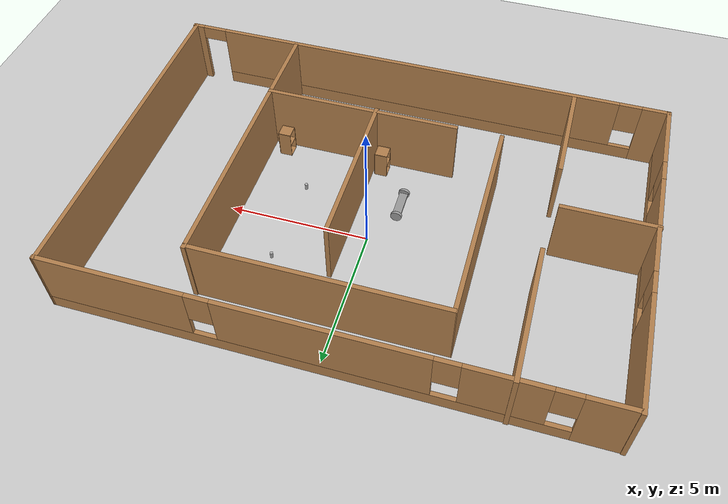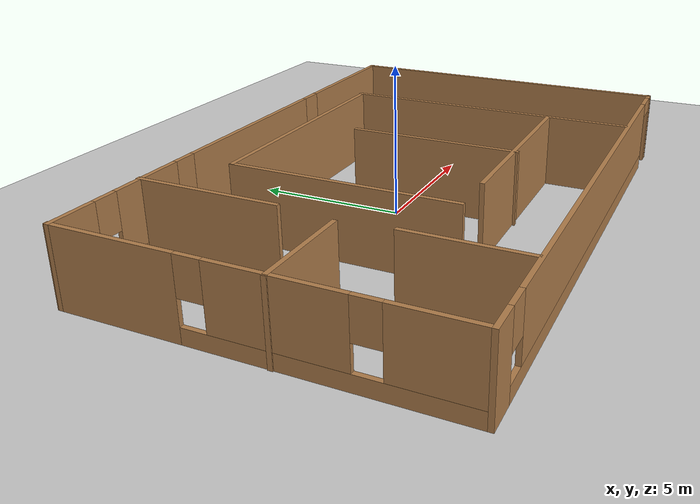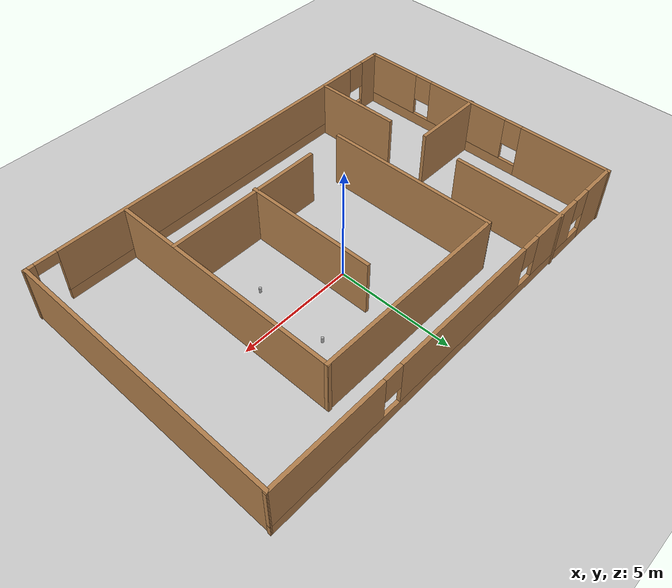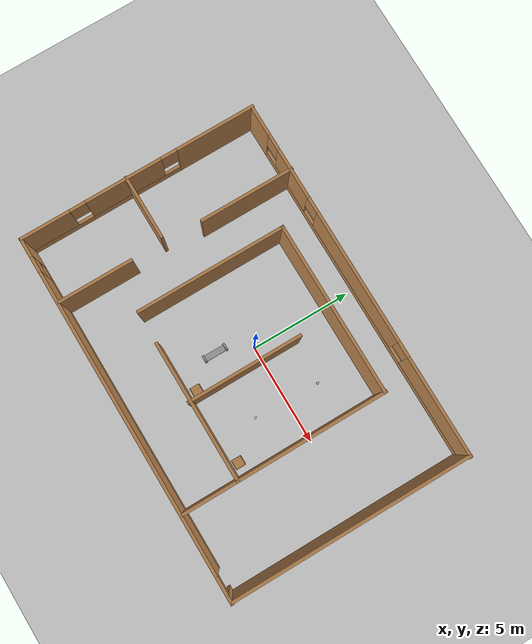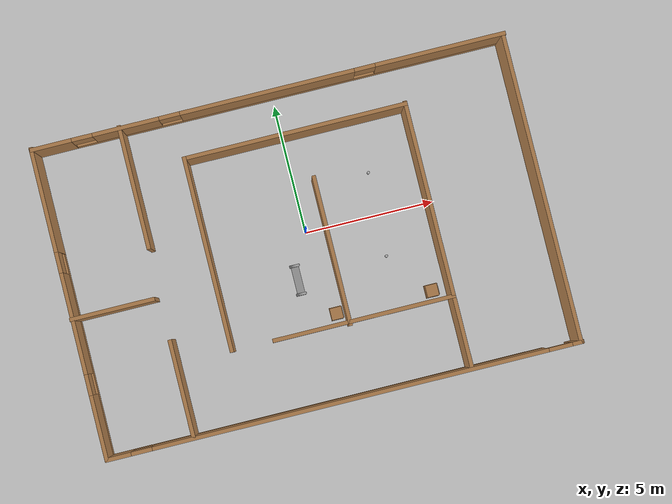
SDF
<sdf version="1.7">
 <world name="world_demo">
  <model name="ground_plane">
   <static>1</static>
   <link name="link">
    <collision name="collision">
     <geometry><plane><normal>0 0 1</normal><size>1 1</size></plane></geometry>
    </collision>
    <visual name="visual">
     <geometry><plane><normal>0 0 1</normal><size>100 100</size></plane></geometry>
     <material>
      <ambient>0.8 0.8 0.8 1</ambient>
      <diffuse>0.8 0.8 0.8 1</diffuse>
      <specular>0.8 0.8 0.8 1</specular>
     </material>
    </visual>
   </link>
  </model>
  <model name="two_wheeler">
   <link name="link_1">
    <inertial>
     <mass>1</mass>
     <inertia>
      <ixx>0.166667</ixx>
      <ixy>0</ixy>
      <ixz>0</ixz>
      <iyy>0.166667</iyy>
      <iyz>0</iyz>
      <izz>0.166667</izz>
     </inertia>
    </inertial>
    <pose>0 -0 0.2 -1e-05 -0 0</pose>
    <visual name="visual">
     <geometry><box><size>0.3 1 0.1</size></box></geometry>
     <material>
      <lighting>1</lighting>
      <script><uri>file://media/materials/scripts/gazebo.material</uri><name>Gazebo/Grey</name></script>
      <shader type="pixel"><normal_map>__default__</normal_map></shader>
      <ambient>0.3 0.3 0.3 1</ambient>
      <diffuse>0.7 0.7 0.7 1</diffuse>
      <specular>0.01 0.01 0.01 1</specular>
      <emissive>0 0 0 1</emissive>
     </material>
    </visual>
    <collision name="collision">
     <geometry><box><size>0.3 1 0.1</size></box></geometry>
     <surface>
      <friction>
       <ode><mu>1</mu><mu2>1</mu2><fdir1>0 0 0</fdir1><slip1>0</slip1><slip2>0</slip2></ode>
       <torsional>
        <coefficient>1</coefficient>
        <patch_radius>0</patch_radius>
        <surface_radius>0</surface_radius>
        <use_patch_radius>1</use_patch_radius>
        <ode><slip>0</slip></ode>
       </torsional>
      </friction>
      <bounce><restitution_coefficient>0</restitution_coefficient><threshold>1e+06</threshold></bounce>
      <contact>
       <collide_without_contact>0</collide_without_contact>
       <collide_without_contact_bitmask>1</collide_without_contact_bitmask>
       <collide_bitmask>1</collide_bitmask>
       <ode>
        <soft_cfm>0</soft_cfm>
        <soft_erp>0.2</soft_erp>
        <kp>1e+13</kp>
        <kd>1</kd>
        <max_vel>0.01</max_vel>
        <min_depth>0</min_depth>
       </ode>
       <bullet>
        <split_impulse>1</split_impulse>
        <split_impulse_penetration_threshold>-0.01</split_impulse_penetration_threshold>
        <soft_cfm>0</soft_cfm>
        <soft_erp>0.2</soft_erp>
        <kp>1e+13</kp>
        <kd>1</kd>
       </bullet>
      </contact>
     </surface>
    </collision>
   </link>
   <link name="link_2">
    <inertial>
     <mass>1</mass>
     <inertia><ixx>0.145833</ixx><ixy>0</ixy><ixz>0</ixz><iyy>0.145833</iyy><iyz>0</iyz><izz>0.125</izz></inertia>
    </inertial>
    <pose>-0 -0.550017 0.2 1.5707 -0 0</pose>
    <visual name="visual">
     <geometry><cylinder><radius>0.2</radius><length>0.1</length></cylinder></geometry>
     <material>
      <lighting>1</lighting>
      <script><uri>file://media/materials/scripts/gazebo.material</uri><name>Gazebo/Grey</name></script>
      <shader type="pixel"><normal_map>__default__</normal_map></shader>
      <ambient>0.3 0.3 0.3 1</ambient>
      <diffuse>0.7 0.7 0.7 1</diffuse>
      <specular>0.01 0.01 0.01 1</specular>
      <emissive>0 0 0 1</emissive>
     </material>
    </visual>
    <collision name="collision">
     <geometry><cylinder><radius>0.2</radius><length>0.1</length></cylinder></geometry>
     <surface>
      <friction>
       <ode><mu>1</mu><mu2>1</mu2><fdir1>0 0 0</fdir1><slip1>0</slip1><slip2>0</slip2></ode>
       <torsional>
        <coefficient>1</coefficient>
        <patch_radius>0</patch_radius>
        <surface_radius>0</surface_radius>
        <use_patch_radius>1</use_patch_radius>
        <ode><slip>0</slip></ode>
       </torsional>
      </friction>
      <bounce><restitution_coefficient>0</restitution_coefficient><threshold>1e+06</threshold></bounce>
      <contact>
       <collide_without_contact>0</collide_without_contact>
       <collide_without_contact_bitmask>1</collide_without_contact_bitmask>
       <collide_bitmask>1</collide_bitmask>
       <ode>
        <soft_cfm>0</soft_cfm>
        <soft_erp>0.2</soft_erp>
        <kp>1e+13</kp>
        <kd>1</kd>
        <max_vel>0.01</max_vel>
        <min_depth>0</min_depth>
       </ode>
       <bullet>
        <split_impulse>1</split_impulse>
        <split_impulse_penetration_threshold>-0.01</split_impulse_penetration_threshold>
        <soft_cfm>0</soft_cfm>
        <soft_erp>0.2</soft_erp>
        <kp>1e+13</kp>
        <kd>1</kd>
       </bullet>
      </contact>
     </surface>
    </collision>
   </link>
   <link name="link_2_clone">
    <inertial>
     <mass>1</mass>
     <inertia><ixx>0.145833</ixx><ixy>0</ixy><ixz>0</ixz><iyy>0.145833</iyy><iyz>0</iyz><izz>0.125</izz></inertia>
    </inertial>
    <pose>0 0.550019 0.199995 1.57069 -0 0</pose>
    <visual name="visual">
     <geometry><cylinder><radius>0.2</radius><length>0.1</length></cylinder></geometry>
     <material>
      <lighting>1</lighting>
      <script><uri>file://media/materials/scripts/gazebo.material</uri><name>Gazebo/Grey</name></script>
      <shader type="pixel"><normal_map>__default__</normal_map></shader>
      <ambient>0.3 0.3 0.3 1</ambient>
      <diffuse>0.7 0.7 0.7 1</diffuse>
      <specular>0.01 0.01 0.01 1</specular>
      <emissive>0 0 0 1</emissive>
     </material>
    </visual>
    <collision name="collision">
     <geometry><cylinder><radius>0.2</radius><length>0.1</length></cylinder></geometry>
     <surface>
      <friction>
       <ode><mu>1</mu><mu2>1</mu2><fdir1>0 0 0</fdir1><slip1>0</slip1><slip2>0</slip2></ode>
       <torsional>
        <coefficient>1</coefficient>
        <patch_radius>0</patch_radius>
        <surface_radius>0</surface_radius>
        <use_patch_radius>1</use_patch_radius>
        <ode><slip>0</slip></ode>
       </torsional>
      </friction>
      <bounce><restitution_coefficient>0</restitution_coefficient><threshold>1e+06</threshold></bounce>
      <contact>
       <collide_without_contact>0</collide_without_contact>
       <collide_without_contact_bitmask>1</collide_without_contact_bitmask>
       <collide_bitmask>1</collide_bitmask>
       <ode>
        <soft_cfm>0</soft_cfm>
        <soft_erp>0.2</soft_erp>
        <kp>1e+13</kp>
        <kd>1</kd>
        <max_vel>0.01</max_vel>
        <min_depth>0</min_depth>
       </ode>
       <bullet>
        <split_impulse>1</split_impulse>
        <split_impulse_penetration_threshold>-0.01</split_impulse_penetration_threshold>
        <soft_cfm>0</soft_cfm>
        <soft_erp>0.2</soft_erp>
        <kp>1e+13</kp>
        <kd>1</kd>
       </bullet>
      </contact>
     </surface>
    </collision>
   </link>
   <joint name="link_1_JOINT_0" type="revolute">
    <parent>link_1</parent>
    <child>link_2</child>
    <axis>
     <xyz>0 0 1</xyz>
     <limit>
      <lower>-1.79769e+308</lower>
      <upper>1.79769e+308</upper>
      <effort>-1</effort>
      <velocity>-1</velocity>
     </limit>
     <dynamics>
      <spring_reference>0</spring_reference>
      <spring_stiffness>0</spring_stiffness>
      <damping>0</damping>
     </dynamics>
    </axis>
    <physics>
     <ode><limit><cfm>0</cfm><erp>0.2</erp></limit><suspension><cfm>0</cfm><erp>0.2</erp></suspension></ode>
    </physics>
   </joint>
   <joint name="link_1_JOINT_1" type="revolute">
    <parent>link_1</parent>
    <child>link_2_clone</child>
    <axis>
     <xyz>1 0 0</xyz>
     <limit>
      <lower>-1.79769e+308</lower>
      <upper>1.79769e+308</upper>
      <effort>-1</effort>
      <velocity>-1</velocity>
     </limit>
     <dynamics>
      <spring_reference>0</spring_reference>
      <spring_stiffness>0</spring_stiffness>
      <damping>0</damping>
     </dynamics>
    </axis>
    <physics>
     <ode><limit><cfm>0</cfm><erp>0.2</erp></limit><suspension><cfm>0</cfm><erp>0.2</erp></suspension></ode>
    </physics>
   </joint>
   <static>0</static>
   <pose>-0.728495 -1.68328 5.3e-05 9.6e-05 -0 0</pose>
  </model>
  <model name="Building">
   <pose>-0.15005 -0.566277 0 0 -0 0</pose>
   <link name="Wall_0">
    <pose>-9.05381 0.015245 0 0 -0 -1.5708</pose>
    <visual name="Wall_0_Visual_0">
     <pose>-3.98822 0 1.25 0 -0 0</pose>
     <geometry><box><size>4.02355 0.15 2.5</size></box></geometry>
     <material>
      <script><uri>file://media/materials/scripts/gazebo.material</uri><name>Gazebo/Wood</name></script>
      <ambient>1 1 1 1</ambient>
     </material>
     <meta><layer>0</layer></meta>
    </visual>
    <collision name="Wall_0_Collision_0">
     <geometry><box><size>4.02355 0.15 2.5</size></box></geometry>
     <pose>-3.98822 0 1.25 0 -0 0</pose>
    </collision>
    <visual name="Wall_0_Visual_1">
     <pose>2.01178 0 0.25 0 -0 0</pose>
     <geometry><box><size>7.97645 0.15 0.5</size></box></geometry>
     <material>
      <script><uri>file://media/materials/scripts/gazebo.material</uri><name>Gazebo/Wood</name></script>
      <ambient>1 1 1 1</ambient>
     </material>
     <meta><layer>0</layer></meta>
    </visual>
    <collision name="Wall_0_Collision_1">
     <geometry><box><size>7.97645 0.15 0.5</size></box></geometry>
     <pose>2.01178 0 0.25 0 -0 0</pose>
    </collision>
    <visual name="Wall_0_Visual_2">
     <pose>0.759746 0 1.5 0 -0 0</pose>
     <geometry><box><size>3.87238 0.15 2</size></box></geometry>
     <material>
      <script><uri>file://media/materials/scripts/gazebo.material</uri><name>Gazebo/Wood</name></script>
      <ambient>1 1 1 1</ambient>
     </material>
     <meta><layer>0</layer></meta>
    </visual>
    <collision name="Wall_0_Collision_2">
     <geometry><box><size>3.87238 0.15 2</size></box></geometry>
     <pose>0.759746 0 1.5 0 -0 0</pose>
    </collision>
    <visual name="Wall_0_Visual_3">
     <pose>4.74797 0 1.5 0 -0 0</pose>
     <geometry><box><size>2.50406 0.15 2</size></box></geometry>
     <material>
      <script><uri>file://media/materials/scripts/gazebo.material</uri><name>Gazebo/Wood</name></script>
      <ambient>1 1 1 1</ambient>
     </material>
     <meta><layer>0</layer></meta>
    </visual>
    <collision name="Wall_0_Collision_3">
     <geometry><box><size>2.50406 0.15 2</size></box></geometry>
     <pose>4.74797 0 1.5 0 -0 0</pose>
    </collision>
    <visual name="Wall_0_Visual_4">
     <pose>-1.57645 0 1.9 0 -0 0</pose>
     <geometry><box><size>0.8 0.15 1.2</size></box></geometry>
     <material>
      <script><uri>file://media/materials/scripts/gazebo.material</uri><name>Gazebo/Wood</name></script>
      <ambient>1 1 1 1</ambient>
     </material>
     <meta><layer>0</layer></meta>
    </visual>
    <collision name="Wall_0_Collision_4">
     <geometry><box><size>0.8 0.15 1.2</size></box></geometry>
     <pose>-1.57645 0 1.9 0 -0 0</pose>
    </collision>
    <visual name="Wall_0_Visual_5">
     <pose>3.09594 0 1.9 0 -0 0</pose>
     <geometry><box><size>0.8 0.15 1.2</size></box></geometry>
     <material>
      <script><uri>file://media/materials/scripts/gazebo.material</uri><name>Gazebo/Wood</name></script>
      <ambient>1 1 1 1</ambient>
     </material>
     <meta><layer>0</layer></meta>
    </visual>
    <collision name="Wall_0_Collision_5">
     <geometry><box><size>0.8 0.15 1.2</size></box></geometry>
     <pose>3.09594 0 1.9 0 -0 0</pose>
    </collision>
   </link>
   <link name="Wall_1">
    <pose>0.015143 -5.94264 0 0 -0 -0.000253</pose>
    <visual name="Wall_1_Visual_0">
     <pose>-8.64249 0 1.25 0 -0 0</pose>
     <geometry><box><size>1.00381 0.15 2.5</size></box></geometry>
     <material>
      <script><uri>file://media/materials/scripts/gazebo.material</uri><name>Gazebo/Wood</name></script>
      <ambient>1 1 1 1</ambient>
     </material>
     <meta><layer>0</layer></meta>
    </visual>
    <collision name="Wall_1_Collision_0">
     <geometry><box><size>1.00381 0.15 2.5</size></box></geometry>
     <pose>-8.64249 0 1.25 0 -0 0</pose>
    </collision>
    <visual name="Wall_1_Visual_1">
     <pose>8.92488 0 1.25 0 -0 0</pose>
     <geometry><box><size>0.439028 0.15 2.5</size></box></geometry>
     <material>
      <script><uri>file://media/materials/scripts/gazebo.material</uri><name>Gazebo/Wood</name></script>
      <ambient>1 1 1 1</ambient>
     </material>
     <meta><layer>0</layer></meta>
    </visual>
    <collision name="Wall_1_Collision_1">
     <geometry><box><size>0.439028 0.15 2.5</size></box></geometry>
     <pose>8.92488 0 1.25 0 -0 0</pose>
    </collision>
    <visual name="Wall_1_Visual_2">
     <pose>-0.167608 0 0.25 0 -0 0</pose>
     <geometry><box><size>15.9459 0.15 0.5</size></box></geometry>
     <material>
      <script><uri>file://media/materials/scripts/gazebo.material</uri><name>Gazebo/Wood</name></script>
      <ambient>1 1 1 1</ambient>
     </material>
     <meta><layer>0</layer></meta>
    </visual>
    <collision name="Wall_1_Collision_2">
     <geometry><box><size>15.9459 0.15 0.5</size></box></geometry>
     <pose>-0.167608 0 0.25 0 -0 0</pose>
    </collision>
    <visual name="Wall_1_Visual_3">
     <pose>0.232392 0 1.5 0 -0 0</pose>
     <geometry><box><size>15.1459 0.15 2</size></box></geometry>
     <material>
      <script><uri>file://media/materials/scripts/gazebo.material</uri><name>Gazebo/Wood</name></script>
      <ambient>1 1 1 1</ambient>
     </material>
     <meta><layer>0</layer></meta>
    </visual>
    <collision name="Wall_1_Collision_3">
     <geometry><box><size>15.1459 0.15 2</size></box></geometry>
     <pose>0.232392 0 1.5 0 -0 0</pose>
    </collision>
    <visual name="Wall_1_Visual_4">
     <pose>-7.74058 0 1.9 0 -0 0</pose>
     <geometry><box><size>0.8 0.15 1.2</size></box></geometry>
     <material>
      <script><uri>file://media/materials/scripts/gazebo.material</uri><name>Gazebo/Wood</name></script>
      <ambient>1 1 1 1</ambient>
     </material>
     <meta><layer>0</layer></meta>
    </visual>
    <collision name="Wall_1_Collision_4">
     <geometry><box><size>0.8 0.15 1.2</size></box></geometry>
     <pose>-7.74058 0 1.9 0 -0 0</pose>
    </collision>
    <visual name="Wall_1_Visual_5">
     <pose>8.25537 0 2.25 0 -0 0</pose>
     <geometry><box><size>0.9 0.15 0.5</size></box></geometry>
     <material>
      <script><uri>file://media/materials/scripts/gazebo.material</uri><name>Gazebo/Wood</name></script>
      <ambient>1 1 1 1</ambient>
     </material>
     <meta><layer>0</layer></meta>
    </visual>
    <collision name="Wall_1_Collision_5">
     <geometry><box><size>0.9 0.15 0.5</size></box></geometry>
     <pose>8.25537 0 2.25 0 -0 0</pose>
    </collision>
   </link>
   <link name="Wall_18">
    <collision name="Wall_18_Collision">
     <geometry><box><size>7 0.15 2.5</size></box></geometry>
     <pose>0 0 1.25 0 -0 0</pose>
    </collision>
    <visual name="Wall_18_Visual">
     <pose>0 0 1.25 0 -0 0</pose>
     <geometry><box><size>7 0.15 2.5</size></box></geometry>
     <material>
      <script><uri>file://media/materials/scripts/gazebo.material</uri><name>Gazebo/Wood</name></script>
      <ambient>1 1 1 1</ambient>
     </material>
     <meta><layer>0</layer></meta>
    </visual>
    <pose>1.45861 -3.14622 0 0 -0 0</pose>
   </link>
   <link name="Wall_2">
    <collision name="Wall_2_Collision">
     <geometry><box><size>12 0.15 2.5</size></box></geometry>
     <pose>0 0 1.25 0 -0 0</pose>
    </collision>
    <visual name="Wall_2_Visual">
     <pose>0 0 1.25 0 -0 0</pose>
     <geometry><box><size>12 0.15 2.5</size></box></geometry>
     <material>
      <script><uri>file://media/materials/scripts/gazebo.material</uri><name>Gazebo/Wood</name></script>
      <ambient>1 1 1 1</ambient>
     </material>
     <meta><layer>0</layer></meta>
    </visual>
    <pose>9.04892 -0.019933 0 0 -0 1.5708</pose>
   </link>
   <link name="Wall_20">
    <collision name="Wall_20_Collision">
     <geometry><box><size>5.75 0.15 2.5</size></box></geometry>
     <pose>0 0 1.25 0 -0 0</pose>
    </collision>
    <visual name="Wall_20_Visual">
     <pose>0 0 1.25 0 -0 0</pose>
     <geometry><box><size>5.75 0.15 2.5</size></box></geometry>
     <material>
      <script><uri>file://media/materials/scripts/gazebo.material</uri><name>Gazebo/Wood</name></script>
      <ambient>1 1 1 1</ambient>
     </material>
     <meta><layer>0</layer></meta>
    </visual>
    <pose>0.913973 -0.425041 0 0 -0 1.5708</pose>
   </link>
   <link name="Wall_22">
    <collision name="Wall_22_Collision">
     <geometry><box><size>4.75 0.15 2.5</size></box></geometry>
     <pose>0 0 1.25 0 -0 0</pose>
    </collision>
    <visual name="Wall_22_Visual">
     <pose>0 0 1.25 0 -0 0</pose>
     <geometry><box><size>4.75 0.15 2.5</size></box></geometry>
     <material>
      <script><uri>file://media/materials/scripts/gazebo.material</uri><name>Gazebo/Wood</name></script>
      <ambient>1 1 1 1</ambient>
     </material>
     <meta><layer>0</layer></meta>
    </visual>
    <pose>-5.67865 3.64495 0 0 -0 -1.5708</pose>
   </link>
   <link name="Wall_24">
    <collision name="Wall_24_Collision">
     <geometry><box><size>3.25 0.15 2.5</size></box></geometry>
     <pose>0 0 1.25 0 -0 0</pose>
    </collision>
    <visual name="Wall_24_Visual">
     <pose>0 0 1.25 0 -0 0</pose>
     <geometry><box><size>3.25 0.15 2.5</size></box></geometry>
     <material>
      <script><uri>file://media/materials/scripts/gazebo.material</uri><name>Gazebo/Wood</name></script>
      <ambient>1 1 1 1</ambient>
     </material>
     <meta><layer>0</layer></meta>
    </visual>
    <pose>-7.53456 -0.570766 0 0 -0 3.14159</pose>
   </link>
   <link name="Wall_26">
    <collision name="Wall_26_Collision">
     <geometry><box><size>3.75 0.15 2.5</size></box></geometry>
     <pose>0 0 1.25 0 -0 0</pose>
    </collision>
    <visual name="Wall_26_Visual">
     <pose>0 0 1.25 0 -0 0</pose>
     <geometry><box><size>3.75 0.15 2.5</size></box></geometry>
     <material>
      <script><uri>file://media/materials/scripts/gazebo.material</uri><name>Gazebo/Wood</name></script>
      <ambient>1 1 1 1</ambient>
     </material>
     <meta><layer>0</layer></meta>
    </visual>
    <pose>-5.73983 -4.05323 0 0 -0 -1.5708</pose>
   </link>
   <link name="Wall_5">
    <pose>0.015143 5.90736 0 0 -0 -0.000253</pose>
    <visual name="Wall_5_Visual_0">
     <pose>-8.33937 0 1.25 0 -0 0</pose>
     <geometry><box><size>1.61005 0.15 2.5</size></box></geometry>
     <material>
      <script><uri>file://media/materials/scripts/gazebo.material</uri><name>Gazebo/Wood</name></script>
      <ambient>1 1 1 1</ambient>
     </material>
     <meta><layer>0</layer></meta>
    </visual>
    <collision name="Wall_5_Collision_0">
     <geometry><box><size>1.61005 0.15 2.5</size></box></geometry>
     <pose>-8.33937 0 1.25 0 -0 0</pose>
    </collision>
    <visual name="Wall_5_Visual_1">
     <pose>0.805026 0 0.25 0 -0 0</pose>
     <geometry><box><size>16.6787 0.15 0.5</size></box></geometry>
     <material>
      <script><uri>file://media/materials/scripts/gazebo.material</uri><name>Gazebo/Wood</name></script>
      <ambient>1 1 1 1</ambient>
     </material>
     <meta><layer>0</layer></meta>
    </visual>
    <collision name="Wall_5_Collision_1">
     <geometry><box><size>16.6787 0.15 0.5</size></box></geometry>
     <pose>0.805026 0 0.25 0 -0 0</pose>
    </collision>
    <visual name="Wall_5_Visual_2">
     <pose>-5.45773 0 1.5 0 -0 0</pose>
     <geometry><box><size>2.55322 0.15 2</size></box></geometry>
     <material>
      <script><uri>file://media/materials/scripts/gazebo.material</uri><name>Gazebo/Wood</name></script>
      <ambient>1 1 1 1</ambient>
     </material>
     <meta><layer>0</layer></meta>
    </visual>
    <collision name="Wall_5_Collision_2">
     <geometry><box><size>2.55322 0.15 2</size></box></geometry>
     <pose>-5.45773 0 1.5 0 -0 0</pose>
    </collision>
    <visual name="Wall_5_Visual_3">
     <pose>-0.028206 0 1.5 0 -0 0</pose>
     <geometry><box><size>6.70584 0.15 2</size></box></geometry>
     <material>
      <script><uri>file://media/materials/scripts/gazebo.material</uri><name>Gazebo/Wood</name></script>
      <ambient>1 1 1 1</ambient>
     </material>
     <meta><layer>0</layer></meta>
    </visual>
    <collision name="Wall_5_Collision_3">
     <geometry><box><size>6.70584 0.15 2</size></box></geometry>
     <pose>-0.028206 0 1.5 0 -0 0</pose>
    </collision>
    <visual name="Wall_5_Visual_4">
     <pose>6.63455 0 1.5 0 -0 0</pose>
     <geometry><box><size>5.01968 0.15 2</size></box></geometry>
     <material>
      <script><uri>file://media/materials/scripts/gazebo.material</uri><name>Gazebo/Wood</name></script>
      <ambient>1 1 1 1</ambient>
     </material>
     <meta><layer>0</layer></meta>
    </visual>
    <collision name="Wall_5_Collision_4">
     <geometry><box><size>5.01968 0.15 2</size></box></geometry>
     <pose>6.63455 0 1.5 0 -0 0</pose>
    </collision>
    <visual name="Wall_5_Visual_5">
     <pose>-7.13434 0 1.9 0 -0 0</pose>
     <geometry><box><size>0.8 0.15 1.2</size></box></geometry>
     <material>
      <script><uri>file://media/materials/scripts/gazebo.material</uri><name>Gazebo/Wood</name></script>
      <ambient>1 1 1 1</ambient>
     </material>
     <meta><layer>0</layer></meta>
    </visual>
    <collision name="Wall_5_Collision_5">
     <geometry><box><size>0.8 0.15 1.2</size></box></geometry>
     <pose>-7.13434 0 1.9 0 -0 0</pose>
    </collision>
    <visual name="Wall_5_Visual_6">
     <pose>-3.78112 0 1.9 0 -0 0</pose>
     <geometry><box><size>0.8 0.15 1.2</size></box></geometry>
     <material>
      <script><uri>file://media/materials/scripts/gazebo.material</uri><name>Gazebo/Wood</name></script>
      <ambient>1 1 1 1</ambient>
     </material>
     <meta><layer>0</layer></meta>
    </visual>
    <collision name="Wall_5_Collision_6">
     <geometry><box><size>0.8 0.15 1.2</size></box></geometry>
     <pose>-3.78112 0 1.9 0 -0 0</pose>
    </collision>
    <visual name="Wall_5_Visual_7">
     <pose>3.72471 0 1.9 0 -0 0</pose>
     <geometry><box><size>0.8 0.15 1.2</size></box></geometry>
     <material>
      <script><uri>file://media/materials/scripts/gazebo.material</uri><name>Gazebo/Wood</name></script>
      <ambient>1 1 1 1</ambient>
     </material>
     <meta><layer>0</layer></meta>
    </visual>
    <collision name="Wall_5_Collision_7">
     <geometry><box><size>0.8 0.15 1.2</size></box></geometry>
     <pose>3.72471 0 1.9 0 -0 0</pose>
    </collision>
   </link>
   <link name="Wall_7">
    <collision name="Wall_7_Collision">
     <geometry><box><size>10.25 0.15 2.5</size></box></geometry>
     <pose>0 0 1.25 0 -0 0</pose>
    </collision>
    <visual name="Wall_7_Visual">
     <pose>0 0 1.25 0 -0 0</pose>
     <geometry><box><size>10.25 0.15 2.5</size></box></geometry>
     <material>
      <script><uri>file://media/materials/scripts/gazebo.material</uri><name>Gazebo/Wood</name></script>
      <ambient>1 1 1 1</ambient>
     </material>
     <meta><layer>0</layer></meta>
    </visual>
    <pose>4.88554 -0.786017 0 0 -0 1.5708</pose>
   </link>
   <link name="Wall_8">
    <collision name="Wall_8_Collision">
     <geometry><box><size>8.60745 0.15 2.5</size></box></geometry>
     <pose>0 0 1.25 0 -0 0</pose>
    </collision>
    <visual name="Wall_8_Visual">
     <pose>0 0 1.25 0 -0 0</pose>
     <geometry><box><size>8.60745 0.15 2.5</size></box></geometry>
     <material>
      <script><uri>file://media/materials/scripts/gazebo.material</uri><name>Gazebo/Wood</name></script>
      <ambient>1 1 1 1</ambient>
     </material>
     <meta><layer>0</layer></meta>
    </visual>
    <pose>0.656815 4.2288 0 0 -0 3.14159</pose>
   </link>
   <link name="Wall_9">
    <collision name="Wall_9_Collision">
     <geometry><box><size>7.5 0.15 2.5</size></box></geometry>
     <pose>0 0 1.25 0 -0 0</pose>
    </collision>
    <visual name="Wall_9_Visual">
     <pose>0 0 1.25 0 -0 0</pose>
     <geometry><box><size>7.5 0.15 2.5</size></box></geometry>
     <material>
      <script><uri>file://media/materials/scripts/gazebo.material</uri><name>Gazebo/Wood</name></script>
      <ambient>1 1 1 1</ambient>
     </material>
     <meta><layer>0</layer></meta>
    </visual>
    <pose>-3.6025 0.553804 0 0 -0 -1.5708</pose>
   </link>
   <static>1</static>
  </model>
  <model name="cabinet">
   <static>1</static>
   <link name="cabinet_bottom_plate">
    <inertial>
     <pose>0 0 -1 0 -0 0</pose>
     <inertia><ixx>2.05</ixx><ixy>0</ixy><ixz>0</ixz><iyy>2.05</iyy><iyz>0</iyz><izz>2.05</izz></inertia>
     <mass>25</mass>
    </inertial>
    <collision name="cabinet_bottom_plate_geom">
     <pose>0 0 0.01 0 -0 0</pose>
     <geometry><box><size>0.45 0.45 0.02</size></box></geometry>
    </collision>
    <visual name="cabinet_bottom_plate_geom_visual">
     <pose>0 0 0.01 0 -0 0</pose>
     <geometry><box><size>0.45 0.45 0.02</size></box></geometry>
     <material>
      <script><uri>file://media/materials/scripts/gazebo.material</uri><name>Gazebo/Wood</name></script>
     </material>
    </visual>
    <collision name="cabinet_bottom_plate_geom_cabinet_back_plate">
     <pose>0.235 0 0.51 0 -0 0</pose>
     <geometry><box><size>0.02 0.45 1.02</size></box></geometry>
    </collision>
    <visual name="cabinet_bottom_plate_geom_cabinet_back_plate_visual">
     <pose>0.235 0 0.51 0 -0 0</pose>
     <geometry><box><size>0.02 0.45 1.02</size></box></geometry>
     <material>
      <script><uri>file://media/materials/scripts/gazebo.material</uri><name>Gazebo/Wood</name></script>
     </material>
    </visual>
    <collision name="cabinet_bottom_plate_geom_cabinet_left_plate">
     <pose>0 0.235 0.51 0 -0 0</pose>
     <geometry><box><size>0.45 0.02 1.02</size></box></geometry>
    </collision>
    <visual name="cabinet_bottom_plate_geom_cabinet_left_plate_visual">
     <pose>0 0.235 0.51 0 -0 0</pose>
     <geometry><box><size>0.45 0.02 1.02</size></box></geometry>
     <material>
      <script><uri>file://media/materials/scripts/gazebo.material</uri><name>Gazebo/Wood</name></script>
     </material>
    </visual>
    <collision name="cabinet_bottom_plate_geom_cabinet_middle_plate">
     <pose>0 0 0.51 0 -0 0</pose>
     <geometry><box><size>0.45 0.45 0.02</size></box></geometry>
    </collision>
    <visual name="cabinet_bottom_plate_geom_cabinet_middle_plate_visual">
     <pose>0 0 0.51 0 -0 0</pose>
     <geometry><box><size>0.45 0.45 0.02</size></box></geometry>
     <material>
      <script><uri>file://media/materials/scripts/gazebo.material</uri><name>Gazebo/Wood</name></script>
     </material>
    </visual>
    <collision name="cabinet_bottom_plate_geom_cabinet_right_plate">
     <pose>0 -0.235 0.51 0 -0 0</pose>
     <geometry><box><size>0.45 0.02 1.02</size></box></geometry>
    </collision>
    <visual name="cabinet_bottom_plate_geom_cabinet_right_plate_visual">
     <pose>0 -0.235 0.51 0 -0 0</pose>
     <geometry><box><size>0.45 0.02 1.02</size></box></geometry>
     <material>
      <script><uri>file://media/materials/scripts/gazebo.material</uri><name>Gazebo/Wood</name></script>
     </material>
    </visual>
    <collision name="cabinet_bottom_plate_geom_cabinet_top_plate">
     <pose>0 0 1.01 0 -0 0</pose>
     <geometry><box><size>0.45 0.45 0.02</size></box></geometry>
    </collision>
    <visual name="cabinet_bottom_plate_geom_cabinet_top_plate_visual">
     <pose>0 0 1.01 0 -0 0</pose>
     <geometry><box><size>0.45 0.45 0.02</size></box></geometry>
     <material>
      <script><uri>file://media/materials/scripts/gazebo.material</uri><name>Gazebo/Wood</name></script>
     </material>
    </visual>
   </link>
   <pose>0.380137 -3.2743 0 0 -0 0</pose>
  </model>
  <model name="cabinet_0">
   <static>1</static>
   <link name="cabinet_bottom_plate">
    <inertial>
     <pose>0 0 -1 0 -0 0</pose>
     <inertia><ixx>2.05</ixx><ixy>0</ixy><ixz>0</ixz><iyy>2.05</iyy><iyz>0</iyz><izz>2.05</izz></inertia>
     <mass>25</mass>
    </inertial>
    <collision name="cabinet_bottom_plate_geom">
     <pose>0 0 0.01 0 -0 0</pose>
     <geometry><box><size>0.45 0.45 0.02</size></box></geometry>
    </collision>
    <visual name="cabinet_bottom_plate_geom_visual">
     <pose>0 0 0.01 0 -0 0</pose>
     <geometry><box><size>0.45 0.45 0.02</size></box></geometry>
     <material>
      <script><uri>file://media/materials/scripts/gazebo.material</uri><name>Gazebo/Wood</name></script>
     </material>
    </visual>
    <collision name="cabinet_bottom_plate_geom_cabinet_back_plate">
     <pose>0.235 0 0.51 0 -0 0</pose>
     <geometry><box><size>0.02 0.45 1.02</size></box></geometry>
    </collision>
    <visual name="cabinet_bottom_plate_geom_cabinet_back_plate_visual">
     <pose>0.235 0 0.51 0 -0 0</pose>
     <geometry><box><size>0.02 0.45 1.02</size></box></geometry>
     <material>
      <script><uri>file://media/materials/scripts/gazebo.material</uri><name>Gazebo/Wood</name></script>
     </material>
    </visual>
    <collision name="cabinet_bottom_plate_geom_cabinet_left_plate">
     <pose>0 0.235 0.51 0 -0 0</pose>
     <geometry><box><size>0.45 0.02 1.02</size></box></geometry>
    </collision>
    <visual name="cabinet_bottom_plate_geom_cabinet_left_plate_visual">
     <pose>0 0.235 0.51 0 -0 0</pose>
     <geometry><box><size>0.45 0.02 1.02</size></box></geometry>
     <material>
      <script><uri>file://media/materials/scripts/gazebo.material</uri><name>Gazebo/Wood</name></script>
     </material>
    </visual>
    <collision name="cabinet_bottom_plate_geom_cabinet_middle_plate">
     <pose>0 0 0.51 0 -0 0</pose>
     <geometry><box><size>0.45 0.45 0.02</size></box></geometry>
    </collision>
    <visual name="cabinet_bottom_plate_geom_cabinet_middle_plate_visual">
     <pose>0 0 0.51 0 -0 0</pose>
     <geometry><box><size>0.45 0.45 0.02</size></box></geometry>
     <material>
      <script><uri>file://media/materials/scripts/gazebo.material</uri><name>Gazebo/Wood</name></script>
     </material>
    </visual>
    <collision name="cabinet_bottom_plate_geom_cabinet_right_plate">
     <pose>0 -0.235 0.51 0 -0 0</pose>
     <geometry><box><size>0.45 0.02 1.02</size></box></geometry>
    </collision>
    <visual name="cabinet_bottom_plate_geom_cabinet_right_plate_visual">
     <pose>0 -0.235 0.51 0 -0 0</pose>
     <geometry><box><size>0.45 0.02 1.02</size></box></geometry>
     <material>
      <script><uri>file://media/materials/scripts/gazebo.material</uri><name>Gazebo/Wood</name></script>
     </material>
    </visual>
    <collision name="cabinet_bottom_plate_geom_cabinet_top_plate">
     <pose>0 0 1.01 0 -0 0</pose>
     <geometry><box><size>0.45 0.45 0.02</size></box></geometry>
    </collision>
    <visual name="cabinet_bottom_plate_geom_cabinet_top_plate_visual">
     <pose>0 0 1.01 0 -0 0</pose>
     <geometry><box><size>0.45 0.45 0.02</size></box></geometry>
     <material>
      <script><uri>file://media/materials/scripts/gazebo.material</uri><name>Gazebo/Wood</name></script>
     </material>
    </visual>
   </link>
   <pose>4.09717 -3.30909 0 0 -0 0</pose>
  </model>
  <model name="beer">
   <link name="link">
    <pose>0 0 0.115 0 -0 0</pose>
    <inertial>
     <mass>0.39</mass>
     <inertia><ixx>0.00058</ixx><ixy>0</ixy><ixz>0</ixz><iyy>0.00058</iyy><iyz>0</iyz><izz>0.00019</izz></inertia>
    </inertial>
    <collision name="collision">
     <geometry><cylinder><radius>0.055</radius><length>0.23</length></cylinder></geometry>
    </collision>
    <visual name="visual">
     <geometry><cylinder><radius>0.055</radius><length>0.23</length></cylinder></geometry>
     <material>
      <script>
       <uri>model://beer/materials/scripts</uri>
       <uri>model://beer/materials/textures</uri>
       <name>Beer/Diffuse</name>
      </script>
     </material>
    </visual>
   </link>
   <pose>2.88097 1.66097 0.040002 2.5e-05 -2e-05 -9e-05</pose>
  </model>
  <model name="beer_0">
   <link name="link">
    <pose>0 0 0.115 0 -0 0</pose>
    <inertial>
     <mass>0.39</mass>
     <inertia><ixx>0.00058</ixx><ixy>0</ixy><ixz>0</ixz><iyy>0.00058</iyy><iyz>0</iyz><izz>0.00019</izz></inertia>
    </inertial>
    <collision name="collision">
     <geometry><cylinder><radius>0.055</radius><length>0.23</length></cylinder></geometry>
    </collision>
    <visual name="visual">
     <geometry><cylinder><radius>0.055</radius><length>0.23</length></cylinder></geometry>
     <material>
      <script>
       <uri>model://beer/materials/scripts</uri>
       <uri>model://beer/materials/textures</uri>
       <name>Beer/Diffuse</name>
      </script>
     </material>
    </visual>
   </link>
   <pose>2.77667 -1.60699 0.04 2e-06 6e-06 0.000493</pose>
  </model>
 </world>
</sdf>
